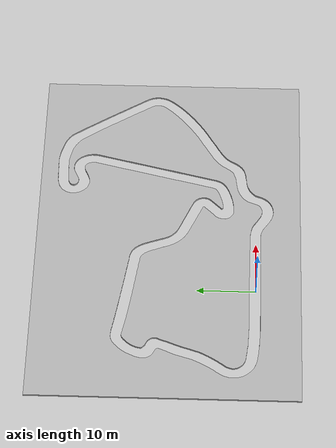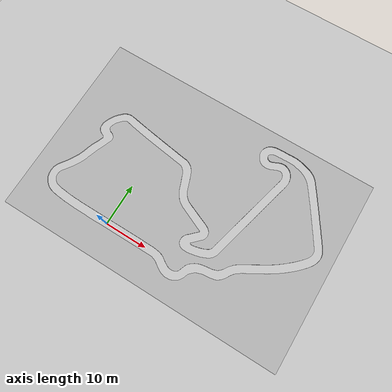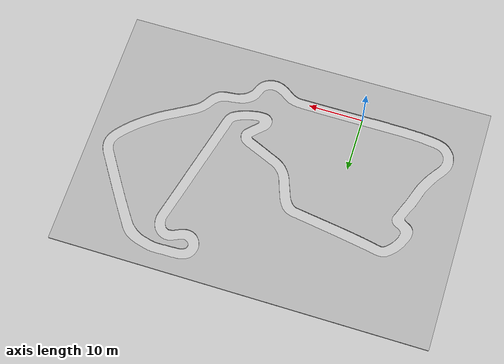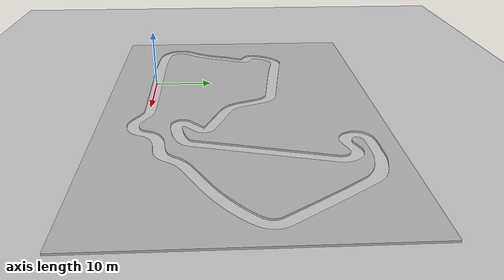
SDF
<?xml version="1.0" ?>
<sdf version="1.5">
  <world name="default">
    <!-- A global light source -->
    <include>
      <uri>model://sun</uri>
    </include>
    <!-- A ground plane -->
    <include>
      <uri>model://ground_plane</uri>
    </include>
    <!-- Custom mesh model -->
    <!-- Custom mesh model -->
    <model name="my_mesh">
      <pose>-22 37.8 0 0 0 0</pose>
      <static>true</static>
      <link name="body">
          <!-- Visual element to display the mesh -->
          <visual name="visual">
              <geometry>
                  <mesh><uri>file:///home/deanjeggs/new_ros2_ws/src/mpcc/racetracks/gbr.stl</uri></mesh>
              </geometry>
          </visual>
          <!-- Collision element for lidar detection -->
          <collision name="collision">
              <geometry>
                  <mesh><uri>file:///home/deanjeggs/new_ros2_ws/src/mpcc/racetracks/gbr.stl</uri></mesh>
              </geometry>
          </collision>
      </link>
    </model>
    <plugin name="model_state_publisher" filename="libgazebo_ros_state.so">
      <ros>
        <namespace>/</namespace>
      </ros>
      <update_rate>10.0</update_rate>
    </plugin>
  </world>
</sdf>
